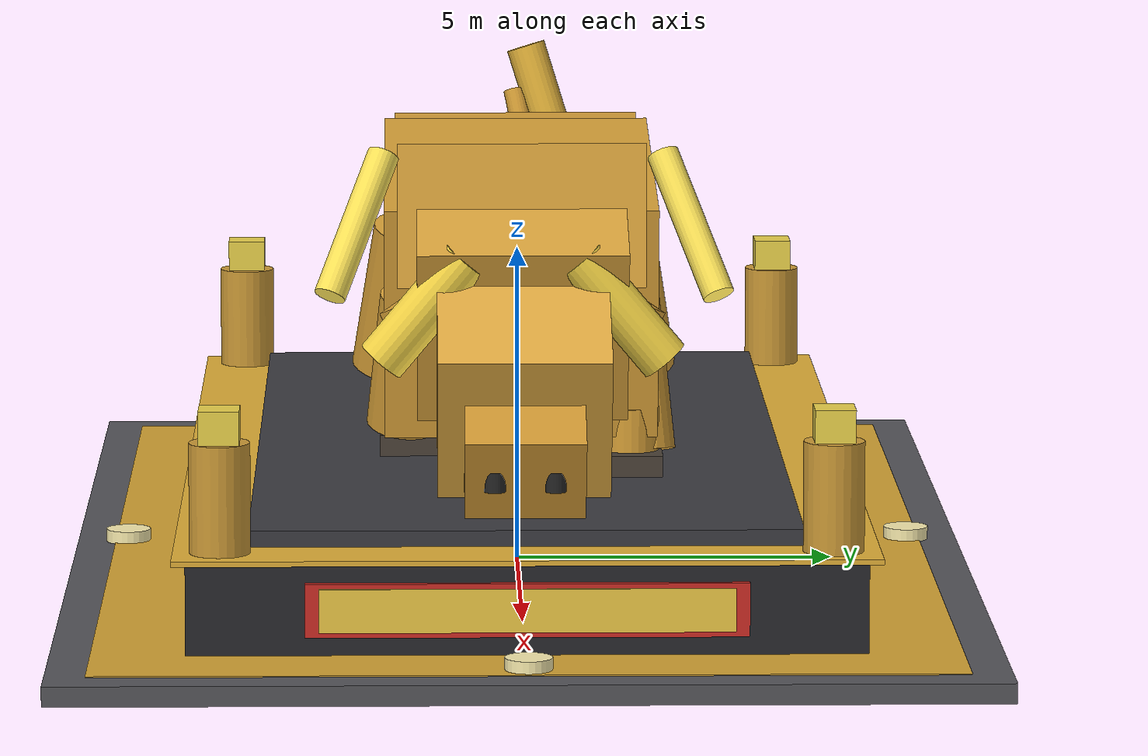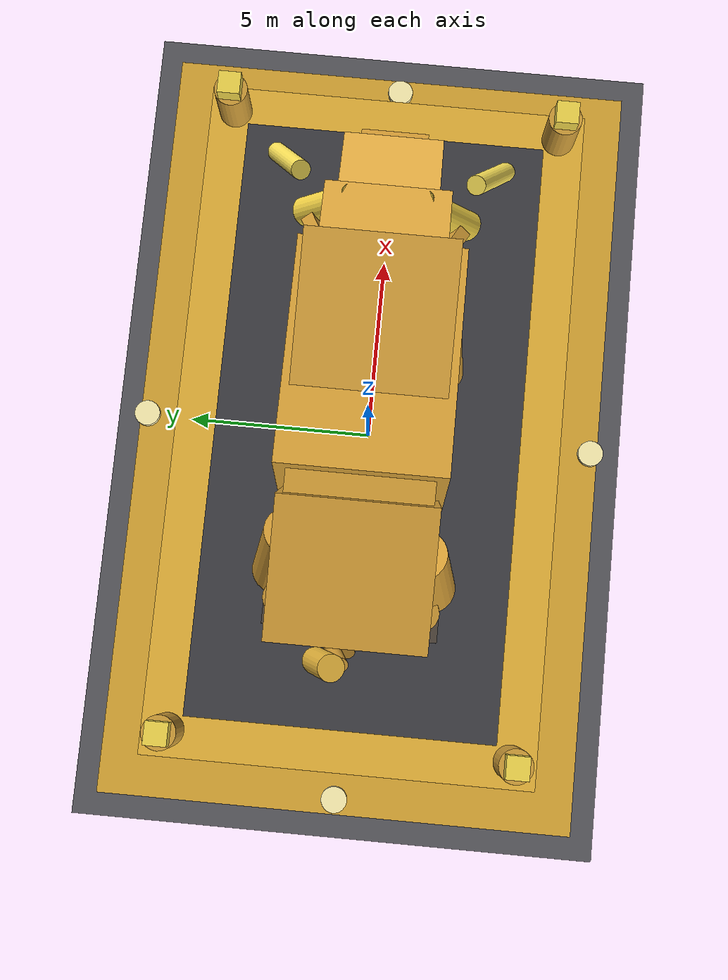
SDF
<?xml version="1.0" ?>
<sdf version="1.8">
  <model name="giant_bull_sculpture_monument">
    <static>true</static>
    <link name="monument_link">
      <!-- ==================== 物理碰撞體 (Collision: 2 Boxes, Zero Overhead) ==================== -->
      <collision name="pedestal_col">
        <pose>0 0 1.0 0 0 0</pose>
        <geometry><box><size>18.0 10.0 2.0</size></box></geometry>
        <surface>
          <friction><ode><mu>0.9</mu><mu2>0.9</mu2></ode></friction>
        </surface>
      </collision>
      <collision name="bull_body_col">
        <pose>0 0 4.8 0 0 0</pose>
        <geometry><box><size>12.0 5.2 4.8</size></box></geometry>
      </collision>

      <!-- ==================== 基座與景觀鋪面 (Pedestal & Civic Plaza) ==================== -->
      <!-- 1. 底層八角形花崗岩景觀基底 (22m x 14m x 0.3m) -->
      <visual name="plaza_base">
        <pose>0 0 0.15 0 0 0</pose>
        <geometry><box><size>22.0 14.0 0.3</size></box></geometry>
        <material>
          <ambient>0.28 0.28 0.30 1</ambient>
          <diffuse>0.34 0.34 0.36 1</diffuse>
          <specular>0.5 0.5 0.5 1</specular>
        </material>
      </visual>
      <!-- 景觀地坪金色環形鑲邊飾帶 -->
      <visual name="plaza_gold_border">
        <pose>0 0 0.31 0 0 0</pose>
        <geometry><box><size>20.8 12.8 0.02</size></box></geometry>
        <material>
          <ambient>0.70 0.50 0.15 1</ambient>
          <diffuse>0.85 0.65 0.20 1</diffuse>
          <specular>0.9 0.8 0.3 1</specular>
        </material>
      </visual>

      <!-- 2. 主基座 (18m x 10m x 1.4m 頂級黑金石基座) -->
      <visual name="pedestal_main">
        <pose>0 0 1.0 0 0 0</pose>
        <geometry><box><size>18.0 10.0 1.4</size></box></geometry>
        <material>
          <ambient>0.12 0.12 0.14 1</ambient>
          <diffuse>0.16 0.16 0.18 1</diffuse>
          <specular>0.8 0.8 0.85 1</specular>
        </material>
      </visual>
      <!-- 基座頂部黃金收邊飾條 -->
      <visual name="pedestal_gold_cornice">
        <pose>0 0 1.72 0 0 0</pose>
        <geometry><box><size>18.4 10.4 0.08</size></box></geometry>
        <material>
          <ambient>0.75 0.55 0.18 1</ambient>
          <diffuse>0.90 0.70 0.22 1</diffuse>
          <specular>0.95 0.85 0.4 1</specular>
        </material>
      </visual>
      <!-- 基座台頂踏面 (16m x 8m x 0.3m 鞍座) -->
      <visual name="pedestal_top_deck">
        <pose>0 0 1.88 0 0 0</pose>
        <geometry><box><size>16.2 8.2 0.24</size></box></geometry>
        <material>
          <ambient>0.20 0.20 0.22 1</ambient>
          <diffuse>0.24 0.24 0.26 1</diffuse>
        </material>
      </visual>

      <!-- 3. 基座紀念銘牌 (銘刻：新竹科學園區・科技神牛・牛市萬馬奔騰・千金科技・股價狂飆) -->
      <visual name="plaque_front">
        <pose>9.05 0 1.0 0 0 0</pose>
        <geometry><box><size>0.1 6.5 0.8</size></box></geometry>
        <material>
          <ambient>0.65 0.15 0.12 1</ambient>
          <diffuse>0.82 0.18 0.15 1</diffuse>
          <specular>0.9 0.7 0.3 1</specular>
        </material>
      </visual>
      <visual name="plaque_front_gold_text">
        <pose>9.11 0 1.0 0 0 0</pose>
        <geometry><box><size>0.02 6.1 0.65</size></box></geometry>
        <material>
          <ambient>0.85 0.68 0.22 1</ambient>
          <diffuse>0.95 0.80 0.28 1</diffuse>
          <specular>0.98 0.90 0.50 1</specular>
        </material>
      </visual>
      <visual name="plaque_back">
        <pose>-9.05 0 1.0 0 0 0</pose>
        <geometry><box><size>0.1 6.5 0.8</size></box></geometry>
        <material>
          <ambient>0.65 0.15 0.12 1</ambient>
          <diffuse>0.82 0.18 0.15 1</diffuse>
        </material>
      </visual>
      <visual name="plaque_back_gold_text">
        <pose>-9.11 0 1.0 0 0 0</pose>
        <geometry><box><size>0.02 6.1 0.65</size></box></geometry>
        <material>
          <ambient>0.85 0.68 0.22 1</ambient>
          <diffuse>0.95 0.80 0.28 1</diffuse>
        </material>
      </visual>

      <!-- 4. 四隅科技多角股價圖騰紀念柱 (Obelisks) -->
      <visual name="obelisk_fl"><pose>8.5 4.5 2.2 0 0 0</pose><geometry><cylinder><radius>0.45</radius><length>2.4</length></cylinder></geometry><material><ambient>0.65 0.48 0.18 1</ambient><diffuse>0.82 0.62 0.22 1</diffuse></material></visual>
      <visual name="obelisk_fl_cap"><pose>8.5 4.5 3.6 0 0 0</pose><geometry><box><size>0.6 0.6 0.6</size></box></geometry><material><ambient>0.9 0.8 0.2 1</ambient><diffuse>0.95 0.85 0.3 1</diffuse><specular>1 1 0.6 1</specular></material></visual>

      <visual name="obelisk_fr"><pose>8.5 -4.5 2.2 0 0 0</pose><geometry><cylinder><radius>0.45</radius><length>2.4</length></cylinder></geometry><material><ambient>0.65 0.48 0.18 1</ambient><diffuse>0.82 0.62 0.22 1</diffuse></material></visual>
      <visual name="obelisk_fr_cap"><pose>8.5 -4.5 3.6 0 0 0</pose><geometry><box><size>0.6 0.6 0.6</size></box></geometry><material><ambient>0.9 0.8 0.2 1</ambient><diffuse>0.95 0.85 0.3 1</diffuse><specular>1 1 0.6 1</specular></material></visual>

      <visual name="obelisk_rl"><pose>-8.5 4.5 2.2 0 0 0</pose><geometry><cylinder><radius>0.45</radius><length>2.4</length></cylinder></geometry><material><ambient>0.65 0.48 0.18 1</ambient><diffuse>0.82 0.62 0.22 1</diffuse></material></visual>
      <visual name="obelisk_rl_cap"><pose>-8.5 4.5 3.6 0 0 0</pose><geometry><box><size>0.6 0.6 0.6</size></box></geometry><material><ambient>0.9 0.8 0.2 1</ambient><diffuse>0.95 0.85 0.3 1</diffuse><specular>1 1 0.6 1</specular></material></visual>

      <visual name="obelisk_rr"><pose>-8.5 -4.5 2.2 0 0 0</pose><geometry><cylinder><radius>0.45</radius><length>2.4</length></cylinder></geometry><material><ambient>0.65 0.48 0.18 1</ambient><diffuse>0.82 0.62 0.22 1</diffuse></material></visual>
      <visual name="obelisk_rr_cap"><pose>-8.5 -4.5 3.6 0 0 0</pose><geometry><box><size>0.6 0.6 0.6</size></box></geometry><material><ambient>0.9 0.8 0.2 1</ambient><diffuse>0.95 0.85 0.3 1</diffuse><specular>1 1 0.6 1</specular></material></visual>

      <!-- ==================== 華爾街・竹科神牛青銅雕塑本體 (Monumental Bull Anatomy) ==================== -->
      <!-- 材質：金光璀璨、氣勢如虹的鍛面金銅 (Burnished Golden-Bronze Patina) -->

      <!-- [A] 軀幹 (Torso & Withers): 寬闊結實的牛背、充滿爆發力的胸腔與肩峰 -->
      <!-- 1. 前胸核心胸腔 (Chest Core) -->
      <visual name="bull_chest_main">
        <pose>0.8 0 4.7 0 0.12 0</pose>
        <geometry><box><size>5.8 4.2 3.6</size></box></geometry>
        <material>
          <ambient>0.68 0.48 0.16 1</ambient>
          <diffuse>0.86 0.64 0.22 1</diffuse>
          <specular>0.95 0.85 0.40 1</specular>
        </material>
      </visual>
      <!-- 2. 隆起的強健肩峰 (Muscular Shoulder Hump / Withers - 象徵高昂動能) -->
      <visual name="bull_withers_hump">
        <pose>2.1 0 5.8 0 -0.15 0</pose>
        <geometry><box><size>3.8 3.8 2.2</size></box></geometry>
        <material>
          <ambient>0.70 0.50 0.18 1</ambient>
          <diffuse>0.88 0.66 0.24 1</diffuse>
          <specular>0.95 0.85 0.40 1</specular>
        </material>
      </visual>
      <!-- 3. 後背脊柱延伸段與強韌側腹 (Rear Torso & Flank) -->
      <visual name="bull_torso_rear">
        <pose>-2.2 0 4.8 0 -0.08 0</pose>
        <geometry><box><size>4.5 3.6 3.2</size></box></geometry>
        <material>
          <ambient>0.68 0.48 0.16 1</ambient>
          <diffuse>0.86 0.64 0.22 1</diffuse>
          <specular>0.95 0.85 0.40 1</specular>
        </material>
      </visual>
      <!-- 4. 健碩發達的牛臀部 (Muscular Rump / Quarters) -->
      <visual name="bull_rump">
        <pose>-4.0 0 4.9 0 -0.18 0</pose>
        <geometry><box><size>3.5 3.9 3.3</size></box></geometry>
        <material>
          <ambient>0.68 0.48 0.16 1</ambient>
          <diffuse>0.86 0.64 0.22 1</diffuse>
          <specular>0.95 0.85 0.40 1</specular>
        </material>
      </visual>

      <!-- [B] 蓄勢俯衝的牛首與刺破青天的黃金雙角 (Head, Snout & Celestial Horns) -->
      <!-- 1. 粗壯傾斜的前頸 (Arched Neck) -->
      <visual name="bull_neck">
        <pose>3.7 0 4.8 0 0.32 0</pose>
        <geometry><box><size>2.8 3.2 2.8</size></box></geometry>
        <material>
          <ambient>0.70 0.50 0.18 1</ambient>
          <diffuse>0.88 0.66 0.24 1</diffuse>
          <specular>0.95 0.85 0.40 1</specular>
        </material>
      </visual>
      <!-- 2. 蓄勢衝刺低俯的頭骨主體 (Massive Lowered Head) -->
      <visual name="bull_head_main">
        <pose>5.3 0 3.9 0 0.42 0</pose>
        <geometry><box><size>3.2 2.6 2.4</size></box></geometry>
        <material>
          <ambient>0.72 0.52 0.20 1</ambient>
          <diffuse>0.90 0.68 0.26 1</diffuse>
          <specular>0.98 0.88 0.45 1</specular>
        </material>
      </visual>
      <!-- 3. 寬闊的吻端口鼻部與怒張鼻孔 (Snout & Muzzle) -->
      <visual name="bull_snout">
        <pose>6.6 0 3.0 0 0.48 0</pose>
        <geometry><box><size>1.9 1.8 1.5</size></box></geometry>
        <material>
          <ambient>0.65 0.45 0.16 1</ambient>
          <diffuse>0.82 0.60 0.20 1</diffuse>
          <specular>0.9 0.8 0.4 1</specular>
        </material>
      </visual>
      <!-- 左右鼻孔細節 -->
      <visual name="bull_nostril_l"><pose>7.4 0.45 2.6 0 0 0</pose><geometry><cylinder><radius>0.16</radius><length>0.3</length></cylinder></geometry><material><ambient>0.1 0.1 0.1 1</ambient><diffuse>0.15 0.15 0.15 1</diffuse></material></visual>
      <visual name="bull_nostril_r"><pose>7.4 -0.45 2.6 0 0 0</pose><geometry><cylinder><radius>0.16</radius><length>0.3</length></cylinder></geometry><material><ambient>0.1 0.1 0.1 1</ambient><diffuse>0.15 0.15 0.15 1</diffuse></material></visual>

      <!-- 4. 象徵歷史新高、向上破頂的「黃金雙角」(Twin Soaring Golden Horns) -->
      <!-- 左角根部 (向外側昂首斜出) -->
      <visual name="horn_base_l">
        <pose>5.1 1.5 4.8 0.65 -0.28 0.35</pose>
        <geometry><cylinder><radius>0.38</radius><length>2.0</length></cylinder></geometry>
        <material>
          <ambient>0.85 0.70 0.20 1</ambient>
          <diffuse>0.98 0.85 0.28 1</diffuse>
          <specular>1.0 0.95 0.60 1</specular>
        </material>
      </visual>
      <!-- 左角向上刺天角尖 (直衝天際 7.5m 高空) -->
      <visual name="horn_tip_l">
        <pose>5.7 2.5 6.2 0.25 -0.55 0.18</pose>
        <geometry><cylinder><radius>0.24</radius><length>2.4</length></cylinder></geometry>
        <material>
          <ambient>0.90 0.78 0.25 1</ambient>
          <diffuse>1.00 0.90 0.35 1</diffuse>
          <specular>1.0 1.0 0.8 1</specular>
        </material>
      </visual>
      <!-- 右角根部 -->
      <visual name="horn_base_r">
        <pose>5.1 -1.5 4.8 -0.65 -0.28 -0.35</pose>
        <geometry><cylinder><radius>0.38</radius><length>2.0</length></cylinder></geometry>
        <material>
          <ambient>0.85 0.70 0.20 1</ambient>
          <diffuse>0.98 0.85 0.28 1</diffuse>
          <specular>1.0 0.95 0.60 1</specular>
        </material>
      </visual>
      <!-- 右角向上刺天角尖 -->
      <visual name="horn_tip_r">
        <pose>5.7 -2.5 6.2 -0.25 -0.55 -0.18</pose>
        <geometry><cylinder><radius>0.24</radius><length>2.4</length></cylinder></geometry>
        <material>
          <ambient>0.90 0.78 0.25 1</ambient>
          <diffuse>1.00 0.90 0.35 1</diffuse>
          <specular>1.0 1.0 0.8 1</specular>
        </material>
      </visual>

      <!-- 銳利牛耳 (後掠角度) -->
      <visual name="bull_ear_l"><pose>4.4 1.7 4.6 -0.4 0.2 0.5</pose><geometry><box><size>0.9 0.35 0.55</size></box></geometry><material><ambient>0.68 0.48 0.16 1</ambient><diffuse>0.86 0.64 0.22 1</diffuse></material></visual>
      <visual name="bull_ear_r"><pose>4.4 -1.7 4.6 0.4 0.2 -0.5</pose><geometry><box><size>0.9 0.35 0.55</size></box></geometry><material><ambient>0.68 0.48 0.16 1</ambient><diffuse>0.86 0.64 0.22 1</diffuse></material></visual>

      <!-- [C] 四肢動態 (Muscular Limbs & Driving Hooves) -->
      <!-- 1. 左前腿 (向前猛力探出踩實踏板) -->
      <visual name="leg_fl_upper">
        <pose>2.6 1.7 3.4 0.1 -0.22 0</pose>
        <geometry><cylinder><radius>0.58</radius><length>2.4</length></cylinder></geometry>
        <material><ambient>0.68 0.48 0.16 1</ambient><diffuse>0.86 0.64 0.22 1</diffuse></material>
      </visual>
      <visual name="leg_fl_lower">
        <pose>3.1 1.7 2.1 0 0 0</pose>
        <geometry><cylinder><radius>0.44</radius><length>1.8</length></cylinder></geometry>
        <material><ambient>0.68 0.48 0.16 1</ambient><diffuse>0.86 0.64 0.22 1</diffuse></material>
      </visual>
      <visual name="hoof_fl">
        <pose>3.2 1.7 2.1 0 0 0</pose>
        <geometry><box><size>1.2 0.95 0.45</size></box></geometry>
        <material><ambient>0.2 0.18 0.15 1</ambient><diffuse>0.3 0.26 0.22 1</diffuse><specular>0.6 0.5 0.3 1</specular></material>
      </visual>

      <!-- 2. 右前腿 (緊繃屈膝沉潛、蓄積下一次蹬地能量) -->
      <visual name="leg_fr_upper">
        <pose>1.8 -1.7 3.5 -0.1 0.28 0</pose>
        <geometry><cylinder><radius>0.58</radius><length>2.2</length></cylinder></geometry>
        <material><ambient>0.68 0.48 0.16 1</ambient><diffuse>0.86 0.64 0.22 1</diffuse></material>
      </visual>
      <visual name="leg_fr_lower">
        <pose>1.3 -1.7 2.1 0 0 0</pose>
        <geometry><cylinder><radius>0.44</radius><length>1.8</length></cylinder></geometry>
        <material><ambient>0.68 0.48 0.16 1</ambient><diffuse>0.86 0.64 0.22 1</diffuse></material>
      </visual>
      <visual name="hoof_fr">
        <pose>1.3 -1.7 2.1 0 0 0</pose>
        <geometry><box><size>1.2 0.95 0.45</size></box></geometry>
        <material><ambient>0.2 0.18 0.15 1</ambient><diffuse>0.3 0.26 0.22 1</diffuse><specular>0.6 0.5 0.3 1</specular></material>
      </visual>

      <!-- 3. 左後腿 (粗壯如柱、向後強力蹬地後推) -->
      <visual name="leg_rl_upper">
        <pose>-3.7 1.8 3.6 0.15 0.35 0</pose>
        <geometry><cylinder><radius>0.68</radius><length>2.5</length></cylinder></geometry>
        <material><ambient>0.68 0.48 0.16 1</ambient><diffuse>0.86 0.64 0.22 1</diffuse></material>
      </visual>
      <visual name="leg_rl_lower">
        <pose>-4.6 1.8 2.1 0 -0.25 0</pose>
        <geometry><cylinder><radius>0.48</radius><length>2.0</length></cylinder></geometry>
        <material><ambient>0.68 0.48 0.16 1</ambient><diffuse>0.86 0.64 0.22 1</diffuse></material>
      </visual>
      <visual name="hoof_rl">
        <pose>-4.9 1.8 2.1 0 0 0</pose>
        <geometry><box><size>1.25 1.0 0.45</size></box></geometry>
        <material><ambient>0.2 0.18 0.15 1</ambient><diffuse>0.3 0.26 0.22 1</diffuse><specular>0.6 0.5 0.3 1</specular></material>
      </visual>

      <!-- 4. 右後腿 (穩如磐石的支撐腿) -->
      <visual name="leg_rr_upper">
        <pose>-3.9 -1.8 3.6 -0.15 0.28 0</pose>
        <geometry><cylinder><radius>0.68</radius><length>2.5</length></cylinder></geometry>
        <material><ambient>0.68 0.48 0.16 1</ambient><diffuse>0.86 0.64 0.22 1</diffuse></material>
      </visual>
      <visual name="leg_rr_lower">
        <pose>-4.7 -1.8 2.1 0 -0.22 0</pose>
        <geometry><cylinder><radius>0.48</radius><length>2.0</length></cylinder></geometry>
        <material><ambient>0.68 0.48 0.16 1</ambient><diffuse>0.86 0.64 0.22 1</diffuse></material>
      </visual>
      <visual name="hoof_rr">
        <pose>-5.0 -1.8 2.1 0 0 0</pose>
        <geometry><box><size>1.25 1.0 0.45</size></box></geometry>
        <material><ambient>0.2 0.18 0.15 1</ambient><diffuse>0.3 0.26 0.22 1</diffuse><specular>0.6 0.5 0.3 1</specular></material>
      </visual>

      <!-- [D] 勝利揚起的狂野牛尾 (Triumphant Upward-Curving Tail) -->
      <visual name="tail_base">
        <pose>-5.4 0 4.8 0 -0.85 0</pose>
        <geometry><cylinder><radius>0.24</radius><length>1.8</length></cylinder></geometry>
        <material><ambient>0.68 0.48 0.16 1</ambient><diffuse>0.86 0.64 0.22 1</diffuse></material>
      </visual>
      <visual name="tail_mid">
        <pose>-6.1 0.25 5.8 0.2 -0.3 0</pose>
        <geometry><cylinder><radius>0.18</radius><length>2.0</length></cylinder></geometry>
        <material><ambient>0.68 0.48 0.16 1</ambient><diffuse>0.86 0.64 0.22 1</diffuse></material>
      </visual>
      <visual name="tail_brush">
        <pose>-6.4 0.45 6.8 0.3 -0.1 0</pose>
        <geometry><cylinder><radius>0.32</radius><length>1.4</length></cylinder></geometry>
        <material>
          <ambient>0.80 0.60 0.18 1</ambient>
          <diffuse>0.95 0.75 0.25 1</diffuse>
          <specular>0.9 0.8 0.4 1</specular>
        </material>
      </visual>

      <!-- [E] 夜間景觀投射燈組 (Plaza Uplighting Units) -->
      <visual name="light_pod_f"><pose>10.0 0 0.35 0 0 0</pose><geometry><cylinder><radius>0.35</radius><length>0.3</length></cylinder></geometry><material><ambient>0.9 0.85 0.6 1</ambient><diffuse>1 0.95 0.7 1</diffuse><specular>1 1 1 1</specular></material></visual>
      <visual name="light_pod_l"><pose>0 6.2 0.35 0 0 0</pose><geometry><cylinder><radius>0.35</radius><length>0.3</length></cylinder></geometry><material><ambient>0.9 0.85 0.6 1</ambient><diffuse>1 0.95 0.7 1</diffuse><specular>1 1 1 1</specular></material></visual>
      <visual name="light_pod_r"><pose>0 -6.2 0.35 0 0 0</pose><geometry><cylinder><radius>0.35</radius><length>0.3</length></cylinder></geometry><material><ambient>0.9 0.85 0.6 1</ambient><diffuse>1 0.95 0.7 1</diffuse><specular>1 1 1 1</specular></material></visual>
      <visual name="light_pod_b"><pose>-10.0 0 0.35 0 0 0</pose><geometry><cylinder><radius>0.35</radius><length>0.3</length></cylinder></geometry><material><ambient>0.9 0.85 0.6 1</ambient><diffuse>1 0.95 0.7 1</diffuse><specular>1 1 1 1</specular></material></visual>
    </link>
  </model>
</sdf>
